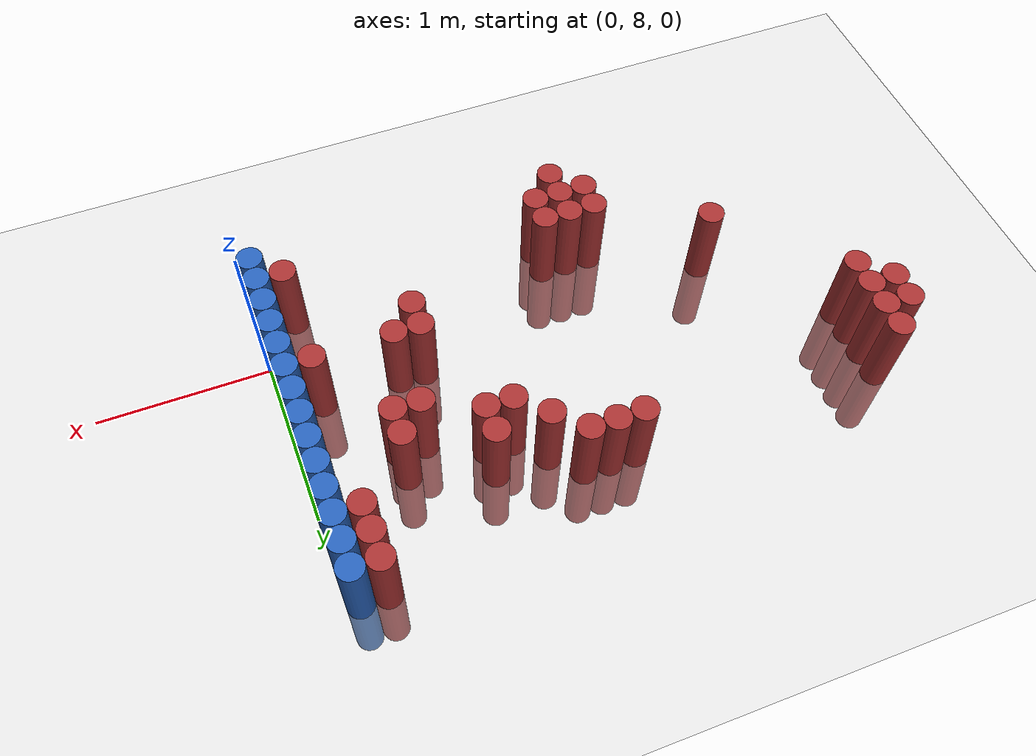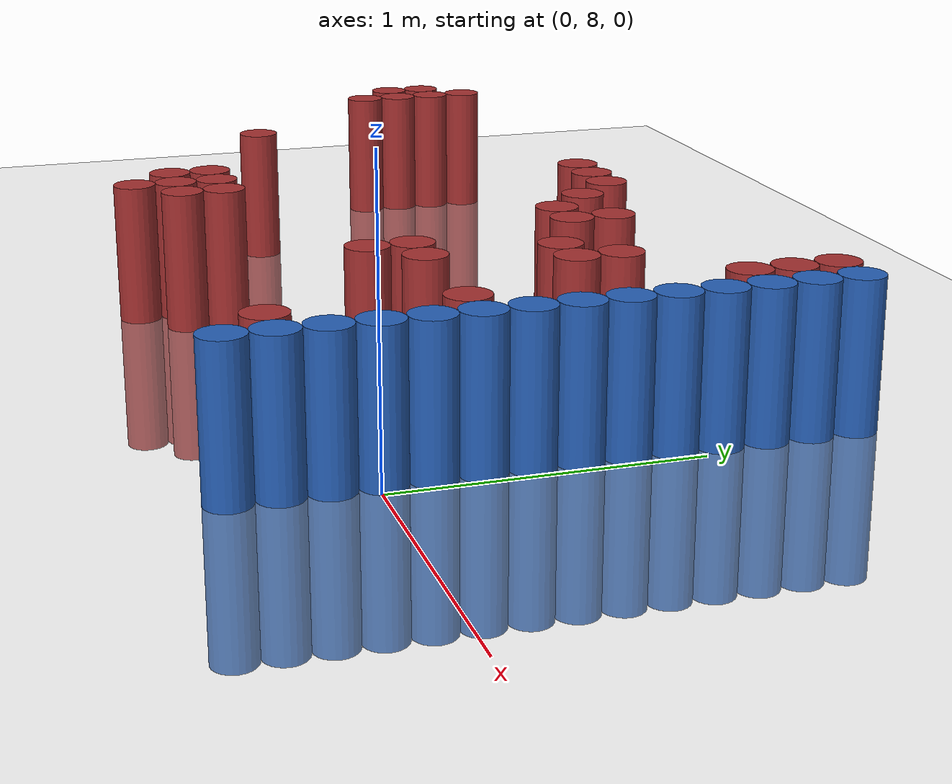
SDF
<sdf version="1.6">
 <world name="world_215">
  <model name="ground_plane">
   <static>1</static>
   <link name="link">
    <collision name="collision">
     <geometry><plane><normal>0 0 1</normal><size>100 100</size></plane></geometry>
     <surface><friction><ode><mu>100</mu><mu2>50</mu2></ode></friction></surface>
    </collision>
    <visual name="visual">
     <cast_shadows>0</cast_shadows>
     <geometry><plane><normal>0 0 1</normal><size>100 100</size></plane></geometry>
     <material>
      <script><uri>file://media/materials/scripts/gazebo.material</uri><name>Gazebo/Grey</name></script>
     </material>
    </visual>
   </link>
  </model>
  <model name="unit_cylinder_163">
   <static>1</static>
   <pose>-3.375000 8.925000 0.000000 0.000000 0.000000 0.000000</pose>
   <link name="link">
    <inertial>
     <mass>1</mass>
     <inertia><ixx>0.145833</ixx><ixy>0</ixy><ixz>0</ixz><iyy>0.145833</iyy><iyz>0</iyz><izz>0.125</izz></inertia>
    </inertial>
    <collision name="collision">
     <geometry><cylinder><radius>0.075000</radius><length>1</length></cylinder></geometry>
    </collision>
    <visual name="visual">
     <geometry><cylinder><radius>0.075000</radius><length>1</length></cylinder></geometry>
     <material>
      <ambient>0.648000 0.192000 0.192000 1</ambient>
      <diffuse>0.648000 0.192000 0.192000 1</diffuse>
     </material>
     <material>
      <script><name>Gazebo/Grey</name><uri>file://media/materials/scripts/gazebo.material</uri></script>
     </material>
    </visual>
   </link>
  </model>
  <model name="unit_cylinder_164">
   <static>1</static>
   <pose>-3.375000 9.075000 0.000000 0.000000 0.000000 0.000000</pose>
   <link name="link">
    <inertial>
     <mass>1</mass>
     <inertia><ixx>0.145833</ixx><ixy>0</ixy><ixz>0</ixz><iyy>0.145833</iyy><iyz>0</iyz><izz>0.125</izz></inertia>
    </inertial>
    <collision name="collision">
     <geometry><cylinder><radius>0.075000</radius><length>1</length></cylinder></geometry>
    </collision>
    <visual name="visual">
     <geometry><cylinder><radius>0.075000</radius><length>1</length></cylinder></geometry>
     <material>
      <ambient>0.648000 0.192000 0.192000 1</ambient>
      <diffuse>0.648000 0.192000 0.192000 1</diffuse>
     </material>
     <material>
      <script><name>Gazebo/Grey</name><uri>file://media/materials/scripts/gazebo.material</uri></script>
     </material>
    </visual>
   </link>
  </model>
  <model name="unit_cylinder_168">
   <static>1</static>
   <pose>-3.225000 8.775000 0.000000 0.000000 0.000000 0.000000</pose>
   <link name="link">
    <inertial>
     <mass>1</mass>
     <inertia><ixx>0.145833</ixx><ixy>0</ixy><ixz>0</ixz><iyy>0.145833</iyy><iyz>0</iyz><izz>0.125</izz></inertia>
    </inertial>
    <collision name="collision">
     <geometry><cylinder><radius>0.075000</radius><length>1</length></cylinder></geometry>
    </collision>
    <visual name="visual">
     <geometry><cylinder><radius>0.075000</radius><length>1</length></cylinder></geometry>
     <material>
      <ambient>0.648000 0.192000 0.192000 1</ambient>
      <diffuse>0.648000 0.192000 0.192000 1</diffuse>
     </material>
     <material>
      <script><name>Gazebo/Grey</name><uri>file://media/materials/scripts/gazebo.material</uri></script>
     </material>
    </visual>
   </link>
  </model>
  <model name="unit_cylinder_169">
   <static>1</static>
   <pose>-3.225000 8.925000 0.000000 0.000000 0.000000 0.000000</pose>
   <link name="link">
    <inertial>
     <mass>1</mass>
     <inertia><ixx>0.145833</ixx><ixy>0</ixy><ixz>0</ixz><iyy>0.145833</iyy><iyz>0</iyz><izz>0.125</izz></inertia>
    </inertial>
    <collision name="collision">
     <geometry><cylinder><radius>0.075000</radius><length>1</length></cylinder></geometry>
    </collision>
    <visual name="visual">
     <geometry><cylinder><radius>0.075000</radius><length>1</length></cylinder></geometry>
     <material>
      <ambient>0.648000 0.192000 0.192000 1</ambient>
      <diffuse>0.648000 0.192000 0.192000 1</diffuse>
     </material>
     <material>
      <script><name>Gazebo/Grey</name><uri>file://media/materials/scripts/gazebo.material</uri></script>
     </material>
    </visual>
   </link>
  </model>
  <model name="unit_cylinder_170">
   <static>1</static>
   <pose>-3.225000 9.075000 0.000000 0.000000 0.000000 0.000000</pose>
   <link name="link">
    <inertial>
     <mass>1</mass>
     <inertia><ixx>0.145833</ixx><ixy>0</ixy><ixz>0</ixz><iyy>0.145833</iyy><iyz>0</iyz><izz>0.125</izz></inertia>
    </inertial>
    <collision name="collision">
     <geometry><cylinder><radius>0.075000</radius><length>1</length></cylinder></geometry>
    </collision>
    <visual name="visual">
     <geometry><cylinder><radius>0.075000</radius><length>1</length></cylinder></geometry>
     <material>
      <ambient>0.648000 0.192000 0.192000 1</ambient>
      <diffuse>0.648000 0.192000 0.192000 1</diffuse>
     </material>
     <material>
      <script><name>Gazebo/Grey</name><uri>file://media/materials/scripts/gazebo.material</uri></script>
     </material>
    </visual>
   </link>
  </model>
  <model name="unit_cylinder_171">
   <static>1</static>
   <pose>-3.225000 9.225000 0.000000 0.000000 0.000000 0.000000</pose>
   <link name="link">
    <inertial>
     <mass>1</mass>
     <inertia><ixx>0.145833</ixx><ixy>0</ixy><ixz>0</ixz><iyy>0.145833</iyy><iyz>0</iyz><izz>0.125</izz></inertia>
    </inertial>
    <collision name="collision">
     <geometry><cylinder><radius>0.075000</radius><length>1</length></cylinder></geometry>
    </collision>
    <visual name="visual">
     <geometry><cylinder><radius>0.075000</radius><length>1</length></cylinder></geometry>
     <material>
      <ambient>0.648000 0.192000 0.192000 1</ambient>
      <diffuse>0.648000 0.192000 0.192000 1</diffuse>
     </material>
     <material>
      <script><name>Gazebo/Grey</name><uri>file://media/materials/scripts/gazebo.material</uri></script>
     </material>
    </visual>
   </link>
  </model>
  <model name="unit_cylinder_188">
   <static>1</static>
   <pose>-2.625000 8.175000 0.000000 0.000000 0.000000 0.000000</pose>
   <link name="link">
    <inertial>
     <mass>1</mass>
     <inertia><ixx>0.145833</ixx><ixy>0</ixy><ixz>0</ixz><iyy>0.145833</iyy><iyz>0</iyz><izz>0.125</izz></inertia>
    </inertial>
    <collision name="collision">
     <geometry><cylinder><radius>0.075000</radius><length>1</length></cylinder></geometry>
    </collision>
    <visual name="visual">
     <geometry><cylinder><radius>0.075000</radius><length>1</length></cylinder></geometry>
     <material>
      <ambient>0.648000 0.192000 0.192000 1</ambient>
      <diffuse>0.648000 0.192000 0.192000 1</diffuse>
     </material>
     <material>
      <script><name>Gazebo/Grey</name><uri>file://media/materials/scripts/gazebo.material</uri></script>
     </material>
    </visual>
   </link>
  </model>
  <model name="unit_cylinder_205">
   <static>1</static>
   <pose>-2.025000 7.725000 0.000000 0.000000 0.000000 0.000000</pose>
   <link name="link">
    <inertial>
     <mass>1</mass>
     <inertia><ixx>0.145833</ixx><ixy>0</ixy><ixz>0</ixz><iyy>0.145833</iyy><iyz>0</iyz><izz>0.125</izz></inertia>
    </inertial>
    <collision name="collision">
     <geometry><cylinder><radius>0.075000</radius><length>1</length></cylinder></geometry>
    </collision>
    <visual name="visual">
     <geometry><cylinder><radius>0.075000</radius><length>1</length></cylinder></geometry>
     <material>
      <ambient>0.648000 0.192000 0.192000 1</ambient>
      <diffuse>0.648000 0.192000 0.192000 1</diffuse>
     </material>
     <material>
      <script><name>Gazebo/Grey</name><uri>file://media/materials/scripts/gazebo.material</uri></script>
     </material>
    </visual>
   </link>
  </model>
  <model name="unit_cylinder_206">
   <static>1</static>
   <pose>-2.025000 7.875000 0.000000 0.000000 0.000000 0.000000</pose>
   <link name="link">
    <inertial>
     <mass>1</mass>
     <inertia><ixx>0.145833</ixx><ixy>0</ixy><ixz>0</ixz><iyy>0.145833</iyy><iyz>0</iyz><izz>0.125</izz></inertia>
    </inertial>
    <collision name="collision">
     <geometry><cylinder><radius>0.075000</radius><length>1</length></cylinder></geometry>
    </collision>
    <visual name="visual">
     <geometry><cylinder><radius>0.075000</radius><length>1</length></cylinder></geometry>
     <material>
      <ambient>0.648000 0.192000 0.192000 1</ambient>
      <diffuse>0.648000 0.192000 0.192000 1</diffuse>
     </material>
     <material>
      <script><name>Gazebo/Grey</name><uri>file://media/materials/scripts/gazebo.material</uri></script>
     </material>
    </visual>
   </link>
  </model>
  <model name="unit_cylinder_208">
   <static>1</static>
   <pose>-1.875000 7.575000 0.000000 0.000000 0.000000 0.000000</pose>
   <link name="link">
    <inertial>
     <mass>1</mass>
     <inertia><ixx>0.145833</ixx><ixy>0</ixy><ixz>0</ixz><iyy>0.145833</iyy><iyz>0</iyz><izz>0.125</izz></inertia>
    </inertial>
    <collision name="collision">
     <geometry><cylinder><radius>0.075000</radius><length>1</length></cylinder></geometry>
    </collision>
    <visual name="visual">
     <geometry><cylinder><radius>0.075000</radius><length>1</length></cylinder></geometry>
     <material>
      <ambient>0.648000 0.192000 0.192000 1</ambient>
      <diffuse>0.648000 0.192000 0.192000 1</diffuse>
     </material>
     <material>
      <script><name>Gazebo/Grey</name><uri>file://media/materials/scripts/gazebo.material</uri></script>
     </material>
    </visual>
   </link>
  </model>
  <model name="unit_cylinder_209">
   <static>1</static>
   <pose>-1.875000 7.725000 0.000000 0.000000 0.000000 0.000000</pose>
   <link name="link">
    <inertial>
     <mass>1</mass>
     <inertia><ixx>0.145833</ixx><ixy>0</ixy><ixz>0</ixz><iyy>0.145833</iyy><iyz>0</iyz><izz>0.125</izz></inertia>
    </inertial>
    <collision name="collision">
     <geometry><cylinder><radius>0.075000</radius><length>1</length></cylinder></geometry>
    </collision>
    <visual name="visual">
     <geometry><cylinder><radius>0.075000</radius><length>1</length></cylinder></geometry>
     <material>
      <ambient>0.648000 0.192000 0.192000 1</ambient>
      <diffuse>0.648000 0.192000 0.192000 1</diffuse>
     </material>
     <material>
      <script><name>Gazebo/Grey</name><uri>file://media/materials/scripts/gazebo.material</uri></script>
     </material>
    </visual>
   </link>
  </model>
  <model name="unit_cylinder_210">
   <static>1</static>
   <pose>-1.875000 7.875000 0.000000 0.000000 0.000000 0.000000</pose>
   <link name="link">
    <inertial>
     <mass>1</mass>
     <inertia><ixx>0.145833</ixx><ixy>0</ixy><ixz>0</ixz><iyy>0.145833</iyy><iyz>0</iyz><izz>0.125</izz></inertia>
    </inertial>
    <collision name="collision">
     <geometry><cylinder><radius>0.075000</radius><length>1</length></cylinder></geometry>
    </collision>
    <visual name="visual">
     <geometry><cylinder><radius>0.075000</radius><length>1</length></cylinder></geometry>
     <material>
      <ambient>0.648000 0.192000 0.192000 1</ambient>
      <diffuse>0.648000 0.192000 0.192000 1</diffuse>
     </material>
     <material>
      <script><name>Gazebo/Grey</name><uri>file://media/materials/scripts/gazebo.material</uri></script>
     </material>
    </visual>
   </link>
  </model>
  <model name="unit_cylinder_212">
   <static>1</static>
   <pose>-1.725000 7.725000 0.000000 0.000000 0.000000 0.000000</pose>
   <link name="link">
    <inertial>
     <mass>1</mass>
     <inertia><ixx>0.145833</ixx><ixy>0</ixy><ixz>0</ixz><iyy>0.145833</iyy><iyz>0</iyz><izz>0.125</izz></inertia>
    </inertial>
    <collision name="collision">
     <geometry><cylinder><radius>0.075000</radius><length>1</length></cylinder></geometry>
    </collision>
    <visual name="visual">
     <geometry><cylinder><radius>0.075000</radius><length>1</length></cylinder></geometry>
     <material>
      <ambient>0.648000 0.192000 0.192000 1</ambient>
      <diffuse>0.648000 0.192000 0.192000 1</diffuse>
     </material>
     <material>
      <script><name>Gazebo/Grey</name><uri>file://media/materials/scripts/gazebo.material</uri></script>
     </material>
    </visual>
   </link>
  </model>
  <model name="unit_cylinder_213">
   <static>1</static>
   <pose>-1.725000 7.875000 0.000000 0.000000 0.000000 0.000000</pose>
   <link name="link">
    <inertial>
     <mass>1</mass>
     <inertia><ixx>0.145833</ixx><ixy>0</ixy><ixz>0</ixz><iyy>0.145833</iyy><iyz>0</iyz><izz>0.125</izz></inertia>
    </inertial>
    <collision name="collision">
     <geometry><cylinder><radius>0.075000</radius><length>1</length></cylinder></geometry>
    </collision>
    <visual name="visual">
     <geometry><cylinder><radius>0.075000</radius><length>1</length></cylinder></geometry>
     <material>
      <ambient>0.648000 0.192000 0.192000 1</ambient>
      <diffuse>0.648000 0.192000 0.192000 1</diffuse>
     </material>
     <material>
      <script><name>Gazebo/Grey</name><uri>file://media/materials/scripts/gazebo.material</uri></script>
     </material>
    </visual>
   </link>
  </model>
  <model name="unit_cylinder_214">
   <static>1</static>
   <pose>-1.725000 9.225000 0.000000 0.000000 0.000000 0.000000</pose>
   <link name="link">
    <inertial>
     <mass>1</mass>
     <inertia><ixx>0.145833</ixx><ixy>0</ixy><ixz>0</ixz><iyy>0.145833</iyy><iyz>0</iyz><izz>0.125</izz></inertia>
    </inertial>
    <collision name="collision">
     <geometry><cylinder><radius>0.075000</radius><length>1</length></cylinder></geometry>
    </collision>
    <visual name="visual">
     <geometry><cylinder><radius>0.075000</radius><length>1</length></cylinder></geometry>
     <material>
      <ambient>0.648000 0.192000 0.192000 1</ambient>
      <diffuse>0.648000 0.192000 0.192000 1</diffuse>
     </material>
     <material>
      <script><name>Gazebo/Grey</name><uri>file://media/materials/scripts/gazebo.material</uri></script>
     </material>
    </visual>
   </link>
  </model>
  <model name="unit_cylinder_215">
   <static>1</static>
   <pose>-1.575000 9.225000 0.000000 0.000000 0.000000 0.000000</pose>
   <link name="link">
    <inertial>
     <mass>1</mass>
     <inertia><ixx>0.145833</ixx><ixy>0</ixy><ixz>0</ixz><iyy>0.145833</iyy><iyz>0</iyz><izz>0.125</izz></inertia>
    </inertial>
    <collision name="collision">
     <geometry><cylinder><radius>0.075000</radius><length>1</length></cylinder></geometry>
    </collision>
    <visual name="visual">
     <geometry><cylinder><radius>0.075000</radius><length>1</length></cylinder></geometry>
     <material>
      <ambient>0.648000 0.192000 0.192000 1</ambient>
      <diffuse>0.648000 0.192000 0.192000 1</diffuse>
     </material>
     <material>
      <script><name>Gazebo/Grey</name><uri>file://media/materials/scripts/gazebo.material</uri></script>
     </material>
    </visual>
   </link>
  </model>
  <model name="unit_cylinder_216">
   <static>1</static>
   <pose>-1.425000 9.225000 0.000000 0.000000 0.000000 0.000000</pose>
   <link name="link">
    <inertial>
     <mass>1</mass>
     <inertia><ixx>0.145833</ixx><ixy>0</ixy><ixz>0</ixz><iyy>0.145833</iyy><iyz>0</iyz><izz>0.125</izz></inertia>
    </inertial>
    <collision name="collision">
     <geometry><cylinder><radius>0.075000</radius><length>1</length></cylinder></geometry>
    </collision>
    <visual name="visual">
     <geometry><cylinder><radius>0.075000</radius><length>1</length></cylinder></geometry>
     <material>
      <ambient>0.648000 0.192000 0.192000 1</ambient>
      <diffuse>0.648000 0.192000 0.192000 1</diffuse>
     </material>
     <material>
      <script><name>Gazebo/Grey</name><uri>file://media/materials/scripts/gazebo.material</uri></script>
     </material>
    </visual>
   </link>
  </model>
  <model name="unit_cylinder_217">
   <static>1</static>
   <pose>-1.275000 9.075000 0.000000 0.000000 0.000000 0.000000</pose>
   <link name="link">
    <inertial>
     <mass>1</mass>
     <inertia><ixx>0.145833</ixx><ixy>0</ixy><ixz>0</ixz><iyy>0.145833</iyy><iyz>0</iyz><izz>0.125</izz></inertia>
    </inertial>
    <collision name="collision">
     <geometry><cylinder><radius>0.075000</radius><length>1</length></cylinder></geometry>
    </collision>
    <visual name="visual">
     <geometry><cylinder><radius>0.075000</radius><length>1</length></cylinder></geometry>
     <material>
      <ambient>0.648000 0.192000 0.192000 1</ambient>
      <diffuse>0.648000 0.192000 0.192000 1</diffuse>
     </material>
     <material>
      <script><name>Gazebo/Grey</name><uri>file://media/materials/scripts/gazebo.material</uri></script>
     </material>
    </visual>
   </link>
  </model>
  <model name="unit_cylinder_218">
   <static>1</static>
   <pose>-1.125000 8.925000 0.000000 0.000000 0.000000 0.000000</pose>
   <link name="link">
    <inertial>
     <mass>1</mass>
     <inertia><ixx>0.145833</ixx><ixy>0</ixy><ixz>0</ixz><iyy>0.145833</iyy><iyz>0</iyz><izz>0.125</izz></inertia>
    </inertial>
    <collision name="collision">
     <geometry><cylinder><radius>0.075000</radius><length>1</length></cylinder></geometry>
    </collision>
    <visual name="visual">
     <geometry><cylinder><radius>0.075000</radius><length>1</length></cylinder></geometry>
     <material>
      <ambient>0.648000 0.192000 0.192000 1</ambient>
      <diffuse>0.648000 0.192000 0.192000 1</diffuse>
     </material>
     <material>
      <script><name>Gazebo/Grey</name><uri>file://media/materials/scripts/gazebo.material</uri></script>
     </material>
    </visual>
   </link>
  </model>
  <model name="unit_cylinder_219">
   <static>1</static>
   <pose>-0.975000 8.925000 0.000000 0.000000 0.000000 0.000000</pose>
   <link name="link">
    <inertial>
     <mass>1</mass>
     <inertia><ixx>0.145833</ixx><ixy>0</ixy><ixz>0</ixz><iyy>0.145833</iyy><iyz>0</iyz><izz>0.125</izz></inertia>
    </inertial>
    <collision name="collision">
     <geometry><cylinder><radius>0.075000</radius><length>1</length></cylinder></geometry>
    </collision>
    <visual name="visual">
     <geometry><cylinder><radius>0.075000</radius><length>1</length></cylinder></geometry>
     <material>
      <ambient>0.648000 0.192000 0.192000 1</ambient>
      <diffuse>0.648000 0.192000 0.192000 1</diffuse>
     </material>
     <material>
      <script><name>Gazebo/Grey</name><uri>file://media/materials/scripts/gazebo.material</uri></script>
     </material>
    </visual>
   </link>
  </model>
  <model name="unit_cylinder_220">
   <static>1</static>
   <pose>-0.975000 9.075000 0.000000 0.000000 0.000000 0.000000</pose>
   <link name="link">
    <inertial>
     <mass>1</mass>
     <inertia><ixx>0.145833</ixx><ixy>0</ixy><ixz>0</ixz><iyy>0.145833</iyy><iyz>0</iyz><izz>0.125</izz></inertia>
    </inertial>
    <collision name="collision">
     <geometry><cylinder><radius>0.075000</radius><length>1</length></cylinder></geometry>
    </collision>
    <visual name="visual">
     <geometry><cylinder><radius>0.075000</radius><length>1</length></cylinder></geometry>
     <material>
      <ambient>0.648000 0.192000 0.192000 1</ambient>
      <diffuse>0.648000 0.192000 0.192000 1</diffuse>
     </material>
     <material>
      <script><name>Gazebo/Grey</name><uri>file://media/materials/scripts/gazebo.material</uri></script>
     </material>
    </visual>
   </link>
  </model>
  <model name="unit_cylinder_222">
   <static>1</static>
   <pose>-0.825000 8.175000 0.000000 0.000000 0.000000 0.000000</pose>
   <link name="link">
    <inertial>
     <mass>1</mass>
     <inertia><ixx>0.145833</ixx><ixy>0</ixy><ixz>0</ixz><iyy>0.145833</iyy><iyz>0</iyz><izz>0.125</izz></inertia>
    </inertial>
    <collision name="collision">
     <geometry><cylinder><radius>0.075000</radius><length>1</length></cylinder></geometry>
    </collision>
    <visual name="visual">
     <geometry><cylinder><radius>0.075000</radius><length>1</length></cylinder></geometry>
     <material>
      <ambient>0.648000 0.192000 0.192000 1</ambient>
      <diffuse>0.648000 0.192000 0.192000 1</diffuse>
     </material>
     <material>
      <script><name>Gazebo/Grey</name><uri>file://media/materials/scripts/gazebo.material</uri></script>
     </material>
    </visual>
   </link>
  </model>
  <model name="unit_cylinder_223">
   <static>1</static>
   <pose>-0.825000 8.325000 0.000000 0.000000 0.000000 0.000000</pose>
   <link name="link">
    <inertial>
     <mass>1</mass>
     <inertia><ixx>0.145833</ixx><ixy>0</ixy><ixz>0</ixz><iyy>0.145833</iyy><iyz>0</iyz><izz>0.125</izz></inertia>
    </inertial>
    <collision name="collision">
     <geometry><cylinder><radius>0.075000</radius><length>1</length></cylinder></geometry>
    </collision>
    <visual name="visual">
     <geometry><cylinder><radius>0.075000</radius><length>1</length></cylinder></geometry>
     <material>
      <ambient>0.648000 0.192000 0.192000 1</ambient>
      <diffuse>0.648000 0.192000 0.192000 1</diffuse>
     </material>
     <material>
      <script><name>Gazebo/Grey</name><uri>file://media/materials/scripts/gazebo.material</uri></script>
     </material>
    </visual>
   </link>
  </model>
  <model name="unit_cylinder_226">
   <static>1</static>
   <pose>-0.675000 8.325000 0.000000 0.000000 0.000000 0.000000</pose>
   <link name="link">
    <inertial>
     <mass>1</mass>
     <inertia><ixx>0.145833</ixx><ixy>0</ixy><ixz>0</ixz><iyy>0.145833</iyy><iyz>0</iyz><izz>0.125</izz></inertia>
    </inertial>
    <collision name="collision">
     <geometry><cylinder><radius>0.075000</radius><length>1</length></cylinder></geometry>
    </collision>
    <visual name="visual">
     <geometry><cylinder><radius>0.075000</radius><length>1</length></cylinder></geometry>
     <material>
      <ambient>0.648000 0.192000 0.192000 1</ambient>
      <diffuse>0.648000 0.192000 0.192000 1</diffuse>
     </material>
     <material>
      <script><name>Gazebo/Grey</name><uri>file://media/materials/scripts/gazebo.material</uri></script>
     </material>
    </visual>
   </link>
  </model>
  <model name="unit_cylinder_227">
   <static>1</static>
   <pose>-0.675000 8.775000 0.000000 0.000000 0.000000 0.000000</pose>
   <link name="link">
    <inertial>
     <mass>1</mass>
     <inertia><ixx>0.145833</ixx><ixy>0</ixy><ixz>0</ixz><iyy>0.145833</iyy><iyz>0</iyz><izz>0.125</izz></inertia>
    </inertial>
    <collision name="collision">
     <geometry><cylinder><radius>0.075000</radius><length>1</length></cylinder></geometry>
    </collision>
    <visual name="visual">
     <geometry><cylinder><radius>0.075000</radius><length>1</length></cylinder></geometry>
     <material>
      <ambient>0.648000 0.192000 0.192000 1</ambient>
      <diffuse>0.648000 0.192000 0.192000 1</diffuse>
     </material>
     <material>
      <script><name>Gazebo/Grey</name><uri>file://media/materials/scripts/gazebo.material</uri></script>
     </material>
    </visual>
   </link>
  </model>
  <model name="unit_cylinder_230">
   <static>1</static>
   <pose>-0.525000 8.775000 0.000000 0.000000 0.000000 0.000000</pose>
   <link name="link">
    <inertial>
     <mass>1</mass>
     <inertia><ixx>0.145833</ixx><ixy>0</ixy><ixz>0</ixz><iyy>0.145833</iyy><iyz>0</iyz><izz>0.125</izz></inertia>
    </inertial>
    <collision name="collision">
     <geometry><cylinder><radius>0.075000</radius><length>1</length></cylinder></geometry>
    </collision>
    <visual name="visual">
     <geometry><cylinder><radius>0.075000</radius><length>1</length></cylinder></geometry>
     <material>
      <ambient>0.648000 0.192000 0.192000 1</ambient>
      <diffuse>0.648000 0.192000 0.192000 1</diffuse>
     </material>
     <material>
      <script><name>Gazebo/Grey</name><uri>file://media/materials/scripts/gazebo.material</uri></script>
     </material>
    </visual>
   </link>
  </model>
  <model name="unit_cylinder_231">
   <static>1</static>
   <pose>-0.525000 8.925000 0.000000 0.000000 0.000000 0.000000</pose>
   <link name="link">
    <inertial>
     <mass>1</mass>
     <inertia><ixx>0.145833</ixx><ixy>0</ixy><ixz>0</ixz><iyy>0.145833</iyy><iyz>0</iyz><izz>0.125</izz></inertia>
    </inertial>
    <collision name="collision">
     <geometry><cylinder><radius>0.075000</radius><length>1</length></cylinder></geometry>
    </collision>
    <visual name="visual">
     <geometry><cylinder><radius>0.075000</radius><length>1</length></cylinder></geometry>
     <material>
      <ambient>0.648000 0.192000 0.192000 1</ambient>
      <diffuse>0.648000 0.192000 0.192000 1</diffuse>
     </material>
     <material>
      <script><name>Gazebo/Grey</name><uri>file://media/materials/scripts/gazebo.material</uri></script>
     </material>
    </visual>
   </link>
  </model>
  <model name="unit_cylinder_240">
   <static>1</static>
   <pose>-0.225000 7.725000 0.000000 0.000000 0.000000 0.000000</pose>
   <link name="link">
    <inertial>
     <mass>1</mass>
     <inertia><ixx>0.145833</ixx><ixy>0</ixy><ixz>0</ixz><iyy>0.145833</iyy><iyz>0</iyz><izz>0.125</izz></inertia>
    </inertial>
    <collision name="collision">
     <geometry><cylinder><radius>0.075000</radius><length>1</length></cylinder></geometry>
    </collision>
    <visual name="visual">
     <geometry><cylinder><radius>0.075000</radius><length>1</length></cylinder></geometry>
     <material>
      <ambient>0.648000 0.192000 0.192000 1</ambient>
      <diffuse>0.648000 0.192000 0.192000 1</diffuse>
     </material>
     <material>
      <script><name>Gazebo/Grey</name><uri>file://media/materials/scripts/gazebo.material</uri></script>
     </material>
    </visual>
   </link>
  </model>
  <model name="unit_cylinder_241">
   <static>1</static>
   <pose>-0.225000 8.325000 0.000000 0.000000 0.000000 0.000000</pose>
   <link name="link">
    <inertial>
     <mass>1</mass>
     <inertia><ixx>0.145833</ixx><ixy>0</ixy><ixz>0</ixz><iyy>0.145833</iyy><iyz>0</iyz><izz>0.125</izz></inertia>
    </inertial>
    <collision name="collision">
     <geometry><cylinder><radius>0.075000</radius><length>1</length></cylinder></geometry>
    </collision>
    <visual name="visual">
     <geometry><cylinder><radius>0.075000</radius><length>1</length></cylinder></geometry>
     <material>
      <ambient>0.648000 0.192000 0.192000 1</ambient>
      <diffuse>0.648000 0.192000 0.192000 1</diffuse>
     </material>
     <material>
      <script><name>Gazebo/Grey</name><uri>file://media/materials/scripts/gazebo.material</uri></script>
     </material>
    </visual>
   </link>
  </model>
  <model name="unit_cylinder_242">
   <static>1</static>
   <pose>-0.225000 9.225000 0.000000 0.000000 0.000000 0.000000</pose>
   <link name="link">
    <inertial>
     <mass>1</mass>
     <inertia><ixx>0.145833</ixx><ixy>0</ixy><ixz>0</ixz><iyy>0.145833</iyy><iyz>0</iyz><izz>0.125</izz></inertia>
    </inertial>
    <collision name="collision">
     <geometry><cylinder><radius>0.075000</radius><length>1</length></cylinder></geometry>
    </collision>
    <visual name="visual">
     <geometry><cylinder><radius>0.075000</radius><length>1</length></cylinder></geometry>
     <material>
      <ambient>0.648000 0.192000 0.192000 1</ambient>
      <diffuse>0.648000 0.192000 0.192000 1</diffuse>
     </material>
     <material>
      <script><name>Gazebo/Grey</name><uri>file://media/materials/scripts/gazebo.material</uri></script>
     </material>
    </visual>
   </link>
  </model>
  <model name="unit_cylinder_243">
   <static>1</static>
   <pose>-0.225000 9.375000 0.000000 0.000000 0.000000 0.000000</pose>
   <link name="link">
    <inertial>
     <mass>1</mass>
     <inertia><ixx>0.145833</ixx><ixy>0</ixy><ixz>0</ixz><iyy>0.145833</iyy><iyz>0</iyz><izz>0.125</izz></inertia>
    </inertial>
    <collision name="collision">
     <geometry><cylinder><radius>0.075000</radius><length>1</length></cylinder></geometry>
    </collision>
    <visual name="visual">
     <geometry><cylinder><radius>0.075000</radius><length>1</length></cylinder></geometry>
     <material>
      <ambient>0.648000 0.192000 0.192000 1</ambient>
      <diffuse>0.648000 0.192000 0.192000 1</diffuse>
     </material>
     <material>
      <script><name>Gazebo/Grey</name><uri>file://media/materials/scripts/gazebo.material</uri></script>
     </material>
    </visual>
   </link>
  </model>
  <model name="unit_cylinder_244">
   <static>1</static>
   <pose>-0.225000 9.525000 0.000000 0.000000 0.000000 0.000000</pose>
   <link name="link">
    <inertial>
     <mass>1</mass>
     <inertia><ixx>0.145833</ixx><ixy>0</ixy><ixz>0</ixz><iyy>0.145833</iyy><iyz>0</iyz><izz>0.125</izz></inertia>
    </inertial>
    <collision name="collision">
     <geometry><cylinder><radius>0.075000</radius><length>1</length></cylinder></geometry>
    </collision>
    <visual name="visual">
     <geometry><cylinder><radius>0.075000</radius><length>1</length></cylinder></geometry>
     <material>
      <ambient>0.648000 0.192000 0.192000 1</ambient>
      <diffuse>0.648000 0.192000 0.192000 1</diffuse>
     </material>
     <material>
      <script><name>Gazebo/Grey</name><uri>file://media/materials/scripts/gazebo.material</uri></script>
     </material>
    </visual>
   </link>
  </model>
  <model name="unit_cylinder_261">
   <static>1</static>
   <pose>-0.075000 7.575000 0.000000 0.000000 0.000000 0.000000</pose>
   <link name="link">
    <inertial>
     <mass>1</mass>
     <inertia><ixx>0.145833</ixx><ixy>0</ixy><ixz>0</ixz><iyy>0.145833</iyy><iyz>0</iyz><izz>0.125</izz></inertia>
    </inertial>
    <collision name="collision">
     <geometry><cylinder><radius>0.075000</radius><length>1</length></cylinder></geometry>
    </collision>
    <visual name="visual">
     <geometry><cylinder><radius>0.075000</radius><length>1</length></cylinder></geometry>
     <material>
      <ambient>0.152000 0.379000 0.720000 1</ambient>
      <diffuse>0.152000 0.379000 0.720000 1</diffuse>
     </material>
     <material>
      <script><name>Gazebo/Grey</name><uri>file://media/materials/scripts/gazebo.material</uri></script>
     </material>
    </visual>
   </link>
  </model>
  <model name="unit_cylinder_262">
   <static>1</static>
   <pose>-0.075000 7.725000 0.000000 0.000000 0.000000 0.000000</pose>
   <link name="link">
    <inertial>
     <mass>1</mass>
     <inertia><ixx>0.145833</ixx><ixy>0</ixy><ixz>0</ixz><iyy>0.145833</iyy><iyz>0</iyz><izz>0.125</izz></inertia>
    </inertial>
    <collision name="collision">
     <geometry><cylinder><radius>0.075000</radius><length>1</length></cylinder></geometry>
    </collision>
    <visual name="visual">
     <geometry><cylinder><radius>0.075000</radius><length>1</length></cylinder></geometry>
     <material>
      <ambient>0.152000 0.379000 0.720000 1</ambient>
      <diffuse>0.152000 0.379000 0.720000 1</diffuse>
     </material>
     <material>
      <script><name>Gazebo/Grey</name><uri>file://media/materials/scripts/gazebo.material</uri></script>
     </material>
    </visual>
   </link>
  </model>
  <model name="unit_cylinder_263">
   <static>1</static>
   <pose>-0.075000 7.875000 0.000000 0.000000 0.000000 0.000000</pose>
   <link name="link">
    <inertial>
     <mass>1</mass>
     <inertia><ixx>0.145833</ixx><ixy>0</ixy><ixz>0</ixz><iyy>0.145833</iyy><iyz>0</iyz><izz>0.125</izz></inertia>
    </inertial>
    <collision name="collision">
     <geometry><cylinder><radius>0.075000</radius><length>1</length></cylinder></geometry>
    </collision>
    <visual name="visual">
     <geometry><cylinder><radius>0.075000</radius><length>1</length></cylinder></geometry>
     <material>
      <ambient>0.152000 0.379000 0.720000 1</ambient>
      <diffuse>0.152000 0.379000 0.720000 1</diffuse>
     </material>
     <material>
      <script><name>Gazebo/Grey</name><uri>file://media/materials/scripts/gazebo.material</uri></script>
     </material>
    </visual>
   </link>
  </model>
  <model name="unit_cylinder_264">
   <static>1</static>
   <pose>-0.075000 8.025000 0.000000 0.000000 0.000000 0.000000</pose>
   <link name="link">
    <inertial>
     <mass>1</mass>
     <inertia><ixx>0.145833</ixx><ixy>0</ixy><ixz>0</ixz><iyy>0.145833</iyy><iyz>0</iyz><izz>0.125</izz></inertia>
    </inertial>
    <collision name="collision">
     <geometry><cylinder><radius>0.075000</radius><length>1</length></cylinder></geometry>
    </collision>
    <visual name="visual">
     <geometry><cylinder><radius>0.075000</radius><length>1</length></cylinder></geometry>
     <material>
      <ambient>0.152000 0.379000 0.720000 1</ambient>
      <diffuse>0.152000 0.379000 0.720000 1</diffuse>
     </material>
     <material>
      <script><name>Gazebo/Grey</name><uri>file://media/materials/scripts/gazebo.material</uri></script>
     </material>
    </visual>
   </link>
  </model>
  <model name="unit_cylinder_265">
   <static>1</static>
   <pose>-0.075000 8.175000 0.000000 0.000000 0.000000 0.000000</pose>
   <link name="link">
    <inertial>
     <mass>1</mass>
     <inertia><ixx>0.145833</ixx><ixy>0</ixy><ixz>0</ixz><iyy>0.145833</iyy><iyz>0</iyz><izz>0.125</izz></inertia>
    </inertial>
    <collision name="collision">
     <geometry><cylinder><radius>0.075000</radius><length>1</length></cylinder></geometry>
    </collision>
    <visual name="visual">
     <geometry><cylinder><radius>0.075000</radius><length>1</length></cylinder></geometry>
     <material>
      <ambient>0.152000 0.379000 0.720000 1</ambient>
      <diffuse>0.152000 0.379000 0.720000 1</diffuse>
     </material>
     <material>
      <script><name>Gazebo/Grey</name><uri>file://media/materials/scripts/gazebo.material</uri></script>
     </material>
    </visual>
   </link>
  </model>
  <model name="unit_cylinder_266">
   <static>1</static>
   <pose>-0.075000 8.325000 0.000000 0.000000 0.000000 0.000000</pose>
   <link name="link">
    <inertial>
     <mass>1</mass>
     <inertia><ixx>0.145833</ixx><ixy>0</ixy><ixz>0</ixz><iyy>0.145833</iyy><iyz>0</iyz><izz>0.125</izz></inertia>
    </inertial>
    <collision name="collision">
     <geometry><cylinder><radius>0.075000</radius><length>1</length></cylinder></geometry>
    </collision>
    <visual name="visual">
     <geometry><cylinder><radius>0.075000</radius><length>1</length></cylinder></geometry>
     <material>
      <ambient>0.152000 0.379000 0.720000 1</ambient>
      <diffuse>0.152000 0.379000 0.720000 1</diffuse>
     </material>
     <material>
      <script><name>Gazebo/Grey</name><uri>file://media/materials/scripts/gazebo.material</uri></script>
     </material>
    </visual>
   </link>
  </model>
  <model name="unit_cylinder_267">
   <static>1</static>
   <pose>-0.075000 8.475000 0.000000 0.000000 0.000000 0.000000</pose>
   <link name="link">
    <inertial>
     <mass>1</mass>
     <inertia><ixx>0.145833</ixx><ixy>0</ixy><ixz>0</ixz><iyy>0.145833</iyy><iyz>0</iyz><izz>0.125</izz></inertia>
    </inertial>
    <collision name="collision">
     <geometry><cylinder><radius>0.075000</radius><length>1</length></cylinder></geometry>
    </collision>
    <visual name="visual">
     <geometry><cylinder><radius>0.075000</radius><length>1</length></cylinder></geometry>
     <material>
      <ambient>0.152000 0.379000 0.720000 1</ambient>
      <diffuse>0.152000 0.379000 0.720000 1</diffuse>
     </material>
     <material>
      <script><name>Gazebo/Grey</name><uri>file://media/materials/scripts/gazebo.material</uri></script>
     </material>
    </visual>
   </link>
  </model>
  <model name="unit_cylinder_268">
   <static>1</static>
   <pose>-0.075000 8.625000 0.000000 0.000000 0.000000 0.000000</pose>
   <link name="link">
    <inertial>
     <mass>1</mass>
     <inertia><ixx>0.145833</ixx><ixy>0</ixy><ixz>0</ixz><iyy>0.145833</iyy><iyz>0</iyz><izz>0.125</izz></inertia>
    </inertial>
    <collision name="collision">
     <geometry><cylinder><radius>0.075000</radius><length>1</length></cylinder></geometry>
    </collision>
    <visual name="visual">
     <geometry><cylinder><radius>0.075000</radius><length>1</length></cylinder></geometry>
     <material>
      <ambient>0.152000 0.379000 0.720000 1</ambient>
      <diffuse>0.152000 0.379000 0.720000 1</diffuse>
     </material>
     <material>
      <script><name>Gazebo/Grey</name><uri>file://media/materials/scripts/gazebo.material</uri></script>
     </material>
    </visual>
   </link>
  </model>
  <model name="unit_cylinder_269">
   <static>1</static>
   <pose>-0.075000 8.775000 0.000000 0.000000 0.000000 0.000000</pose>
   <link name="link">
    <inertial>
     <mass>1</mass>
     <inertia><ixx>0.145833</ixx><ixy>0</ixy><ixz>0</ixz><iyy>0.145833</iyy><iyz>0</iyz><izz>0.125</izz></inertia>
    </inertial>
    <collision name="collision">
     <geometry><cylinder><radius>0.075000</radius><length>1</length></cylinder></geometry>
    </collision>
    <visual name="visual">
     <geometry><cylinder><radius>0.075000</radius><length>1</length></cylinder></geometry>
     <material>
      <ambient>0.152000 0.379000 0.720000 1</ambient>
      <diffuse>0.152000 0.379000 0.720000 1</diffuse>
     </material>
     <material>
      <script><name>Gazebo/Grey</name><uri>file://media/materials/scripts/gazebo.material</uri></script>
     </material>
    </visual>
   </link>
  </model>
  <model name="unit_cylinder_270">
   <static>1</static>
   <pose>-0.075000 8.925000 0.000000 0.000000 0.000000 0.000000</pose>
   <link name="link">
    <inertial>
     <mass>1</mass>
     <inertia><ixx>0.145833</ixx><ixy>0</ixy><ixz>0</ixz><iyy>0.145833</iyy><iyz>0</iyz><izz>0.125</izz></inertia>
    </inertial>
    <collision name="collision">
     <geometry><cylinder><radius>0.075000</radius><length>1</length></cylinder></geometry>
    </collision>
    <visual name="visual">
     <geometry><cylinder><radius>0.075000</radius><length>1</length></cylinder></geometry>
     <material>
      <ambient>0.152000 0.379000 0.720000 1</ambient>
      <diffuse>0.152000 0.379000 0.720000 1</diffuse>
     </material>
     <material>
      <script><name>Gazebo/Grey</name><uri>file://media/materials/scripts/gazebo.material</uri></script>
     </material>
    </visual>
   </link>
  </model>
  <model name="unit_cylinder_271">
   <static>1</static>
   <pose>-0.075000 9.075000 0.000000 0.000000 0.000000 0.000000</pose>
   <link name="link">
    <inertial>
     <mass>1</mass>
     <inertia><ixx>0.145833</ixx><ixy>0</ixy><ixz>0</ixz><iyy>0.145833</iyy><iyz>0</iyz><izz>0.125</izz></inertia>
    </inertial>
    <collision name="collision">
     <geometry><cylinder><radius>0.075000</radius><length>1</length></cylinder></geometry>
    </collision>
    <visual name="visual">
     <geometry><cylinder><radius>0.075000</radius><length>1</length></cylinder></geometry>
     <material>
      <ambient>0.152000 0.379000 0.720000 1</ambient>
      <diffuse>0.152000 0.379000 0.720000 1</diffuse>
     </material>
     <material>
      <script><name>Gazebo/Grey</name><uri>file://media/materials/scripts/gazebo.material</uri></script>
     </material>
    </visual>
   </link>
  </model>
  <model name="unit_cylinder_272">
   <static>1</static>
   <pose>-0.075000 9.225000 0.000000 0.000000 0.000000 0.000000</pose>
   <link name="link">
    <inertial>
     <mass>1</mass>
     <inertia><ixx>0.145833</ixx><ixy>0</ixy><ixz>0</ixz><iyy>0.145833</iyy><iyz>0</iyz><izz>0.125</izz></inertia>
    </inertial>
    <collision name="collision">
     <geometry><cylinder><radius>0.075000</radius><length>1</length></cylinder></geometry>
    </collision>
    <visual name="visual">
     <geometry><cylinder><radius>0.075000</radius><length>1</length></cylinder></geometry>
     <material>
      <ambient>0.152000 0.379000 0.720000 1</ambient>
      <diffuse>0.152000 0.379000 0.720000 1</diffuse>
     </material>
     <material>
      <script><name>Gazebo/Grey</name><uri>file://media/materials/scripts/gazebo.material</uri></script>
     </material>
    </visual>
   </link>
  </model>
  <model name="unit_cylinder_273">
   <static>1</static>
   <pose>-0.075000 9.375000 0.000000 0.000000 0.000000 0.000000</pose>
   <link name="link">
    <inertial>
     <mass>1</mass>
     <inertia><ixx>0.145833</ixx><ixy>0</ixy><ixz>0</ixz><iyy>0.145833</iyy><iyz>0</iyz><izz>0.125</izz></inertia>
    </inertial>
    <collision name="collision">
     <geometry><cylinder><radius>0.075000</radius><length>1</length></cylinder></geometry>
    </collision>
    <visual name="visual">
     <geometry><cylinder><radius>0.075000</radius><length>1</length></cylinder></geometry>
     <material>
      <ambient>0.152000 0.379000 0.720000 1</ambient>
      <diffuse>0.152000 0.379000 0.720000 1</diffuse>
     </material>
     <material>
      <script><name>Gazebo/Grey</name><uri>file://media/materials/scripts/gazebo.material</uri></script>
     </material>
    </visual>
   </link>
  </model>
  <model name="unit_cylinder_274">
   <static>1</static>
   <pose>-0.075000 9.525000 0.000000 0.000000 0.000000 0.000000</pose>
   <link name="link">
    <inertial>
     <mass>1</mass>
     <inertia><ixx>0.145833</ixx><ixy>0</ixy><ixz>0</ixz><iyy>0.145833</iyy><iyz>0</iyz><izz>0.125</izz></inertia>
    </inertial>
    <collision name="collision">
     <geometry><cylinder><radius>0.075000</radius><length>1</length></cylinder></geometry>
    </collision>
    <visual name="visual">
     <geometry><cylinder><radius>0.075000</radius><length>1</length></cylinder></geometry>
     <material>
      <ambient>0.152000 0.379000 0.720000 1</ambient>
      <diffuse>0.152000 0.379000 0.720000 1</diffuse>
     </material>
     <material>
      <script><name>Gazebo/Grey</name><uri>file://media/materials/scripts/gazebo.material</uri></script>
     </material>
    </visual>
   </link>
  </model>
 </world>
</sdf>
